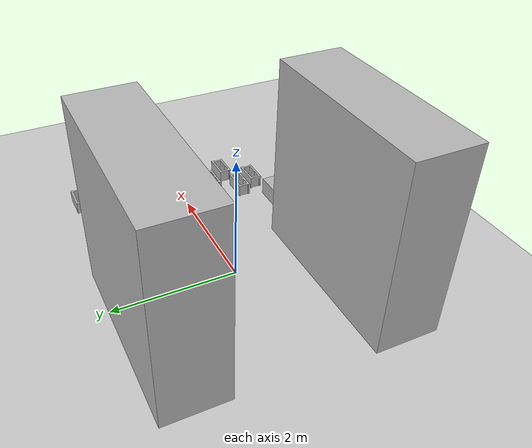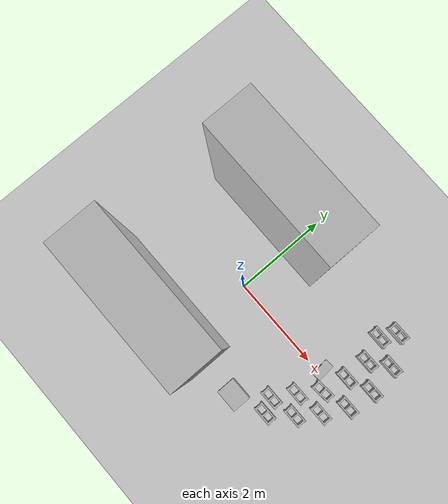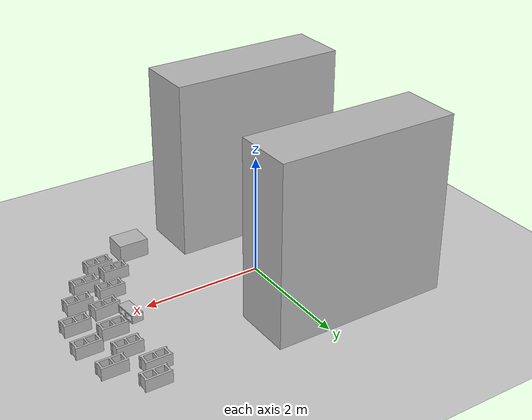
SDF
<sdf version="1.7">
 <world name="default">
  <light name="sun" type="directional">
   <pose>0 0 10 0 -0 0</pose>
   <diffuse>0.8 0.8 0.8 1</diffuse>
   <specular>0.2 0.2 0.2 1</specular>
   <attenuation>
    <range>1000</range>
    <constant>0.9</constant>
    <linear>0.01</linear>
    <quadratic>0.001</quadratic>
   </attenuation>
   <direction>-0.5 0.1 -0.9</direction>
   <spot><inner_angle>0</inner_angle><outer_angle>0</outer_angle><falloff>0</falloff></spot>
  </light>
  <model name="ground_plane">
   <static>1</static>
   <link name="link">
    <collision name="collision">
     <geometry><plane><normal>0 0 1</normal><size>100 100</size></plane></geometry>
     <surface>
      <contact><collide_bitmask>65535</collide_bitmask></contact>
      <friction><ode><mu>100</mu><mu2>50</mu2></ode></friction>
     </surface>
    </collision>
    <visual name="visual">
     <cast_shadows>0</cast_shadows>
     <geometry><plane><normal>0 0 1</normal><size>100 100</size></plane></geometry>
     <material>
      <script><uri>file://media/materials/scripts/gazebo.material</uri><name>Gazebo/Grey</name></script>
     </material>
    </visual>
   </link>
  </model>
  <gravity>0 0 -9.8</gravity>
  <magnetic_field>6e-06 2.3e-05 -4.2e-05</magnetic_field>
  <atmosphere type="adiabatic"/>
  <physics type="ode">
   <max_step_size>0.001</max_step_size>
   <real_time_factor>1</real_time_factor>
   <real_time_update_rate>1000</real_time_update_rate>
  </physics>
  <scene><ambient>0.4 0.4 0.4 1</ambient><background>0.7 0.7 0.7 1</background><shadows>1</shadows></scene>
  <spherical_coordinates>
   <surface_model>EARTH_WGS84</surface_model>
   <latitude_deg>0</latitude_deg>
   <longitude_deg>0</longitude_deg>
   <elevation>0</elevation>
   <heading_deg>0</heading_deg>
  </spherical_coordinates>
  <model name="cardboard_box">
   <pose>1.51233 -1.56152 0.149 0 -0 0</pose>
   <link name="link">
    <inertial>
     <mass>2</mass>
     <inertia>
      <ixx>0.0416667</ixx>
      <ixy>0</ixy>
      <ixz>0</ixz>
      <iyy>0.0566667</iyy>
      <iyz>0</iyz>
      <izz>0.0683333</izz>
     </inertia>
    </inertial>
    <collision name="collision">
     <geometry><box><size>0.5 0.4 0.3</size></box></geometry>
     <surface>
      <friction><ode><mu>1</mu><mu2>1</mu2></ode></friction>
      <contact><ode><kp>1e+07</kp><kd>1</kd><min_depth>0.001</min_depth><max_vel>0.1</max_vel></ode></contact>
     </surface>
    </collision>
    <visual name="visual">
     <pose>0 0 -0.15 0 -0 0</pose>
     <geometry>
      <mesh><uri>model://cardboard_box/meshes/cardboard_box.dae</uri><scale>1.25932 1.00745 0.755591</scale></mesh>
     </geometry>
    </visual>
   </link>
  </model>
  <model name="brick_box_3x1x3">
   <static>1</static>
   <link name="chassis">
    <pose>0 0 1.5 0 -0 0</pose>
    <collision name="collision"><geometry><box><size>3 1 3</size></box></geometry></collision>
    <visual name="visual">
     <geometry><mesh><uri>model://brick_box_3x1x3/meshes/simple_box.dae</uri><scale>3 1 3</scale></mesh></geometry>
     <material>
      <script>
       <uri>model://brick_box_3x1x3/materials/scripts</uri>
       <uri>model://brick_box_3x1x3/materials/textures</uri>
       <name>BrickBox/Diffuse</name>
      </script>
     </material>
    </visual>
   </link>
   <pose>-0.609958 1.51658 0 0 -0 0</pose>
  </model>
  <model name="brick_box_3x1x3_0">
   <static>1</static>
   <link name="chassis">
    <pose>0 0 1.5 0 -0 0</pose>
    <collision name="collision"><geometry><box><size>3 1 3</size></box></geometry></collision>
    <visual name="visual">
     <geometry><mesh><uri>model://brick_box_3x1x3/meshes/simple_box.dae</uri><scale>3 1 3</scale></mesh></geometry>
     <material>
      <script>
       <uri>model://brick_box_3x1x3/materials/scripts</uri>
       <uri>model://brick_box_3x1x3/materials/textures</uri>
       <name>BrickBox/Diffuse</name>
      </script>
     </material>
    </visual>
   </link>
   <pose>-0.748604 -1.51913 0 0 -0 0</pose>
  </model>
  <model name="cinder_block">
   <link name="link">
    <inertial>
     <pose>0 0 0.1016 0 -0 0</pose>
     <mass>5</mass>
     <inertia>
      <ixx>0.028705</ixx>
      <ixy>0</ixy>
      <iyy>0.073708</iyy>
      <ixz>0</ixz>
      <iyz>0</iyz>
      <izz>0.06908</izz>
     </inertia>
    </inertial>
    <visual name="visual">
     <geometry><mesh><uri>model://cinder_block/meshes/cinder_block.dae</uri></mesh></geometry>
    </visual>
    <collision name="left">
     <pose>0 -0.08465 0.1016 0 -0 0</pose>
     <geometry><box><size>0.43495 0.0339 0.2032</size></box></geometry>
     <surface>
      <contact><ode><max_vel>0.1</max_vel><min_depth>0.001</min_depth></ode></contact>
      <friction><ode><mu>1</mu><mu2>1</mu2></ode></friction>
     </surface>
    </collision>
    <collision name="right">
     <pose>0 0.08465 0.1016 0 -0 0</pose>
     <geometry><box><size>0.43495 0.0339 0.2032</size></box></geometry>
     <surface>
      <contact><ode><max_vel>0.1</max_vel><min_depth>0.001</min_depth></ode></contact>
      <friction><ode><mu>1</mu><mu2>1</mu2></ode></friction>
     </surface>
    </collision>
    <collision name="front">
     <pose>0.18625 0 0.1016 0 -0 0</pose>
     <geometry><box><size>0.0339 0.1354 0.203</size></box></geometry>
     <surface>
      <contact><ode><max_vel>0.1</max_vel><min_depth>0.001</min_depth></ode></contact>
      <friction><ode><mu>1</mu><mu2>1</mu2></ode></friction>
     </surface>
    </collision>
    <collision name="middle">
     <pose>0 0 0.1016 0 -0 0</pose>
     <geometry><box><size>0.0339 0.1354 0.203</size></box></geometry>
     <surface>
      <contact><ode><max_vel>0.1</max_vel><min_depth>0.001</min_depth></ode></contact>
      <friction><ode><mu>1</mu><mu2>1</mu2></ode></friction>
     </surface>
    </collision>
    <collision name="back">
     <pose>-0.18625 0 0.1016 0 -0 0</pose>
     <geometry><box><size>0.0339 0.1354 0.203</size></box></geometry>
     <surface>
      <contact><ode><max_vel>0.1</max_vel><min_depth>0.001</min_depth></ode></contact>
      <friction><ode><mu>1</mu><mu2>1</mu2></ode></friction>
     </surface>
    </collision>
   </link>
   <pose>2.1958 -1.33658 -6e-06 -1e-06 2.8e-05 -0</pose>
  </model>
  <model name="cinder_block_clone">
   <link name="link">
    <inertial>
     <pose>0 0 0.1016 0 -0 0</pose>
     <mass>5</mass>
     <inertia>
      <ixx>0.028705</ixx>
      <ixy>0</ixy>
      <iyy>0.073708</iyy>
      <ixz>0</ixz>
      <iyz>0</iyz>
      <izz>0.06908</izz>
     </inertia>
    </inertial>
    <visual name="visual">
     <geometry><mesh><uri>model://cinder_block/meshes/cinder_block.dae</uri></mesh></geometry>
    </visual>
    <collision name="left">
     <pose>0 -0.08465 0.1016 0 -0 0</pose>
     <geometry><box><size>0.43495 0.0339 0.2032</size></box></geometry>
     <surface>
      <contact><ode><max_vel>0.1</max_vel><min_depth>0.001</min_depth></ode></contact>
      <friction><ode><mu>1</mu><mu2>1</mu2></ode></friction>
     </surface>
    </collision>
    <collision name="right">
     <pose>0 0.08465 0.1016 0 -0 0</pose>
     <geometry><box><size>0.43495 0.0339 0.2032</size></box></geometry>
     <surface>
      <contact><ode><max_vel>0.1</max_vel><min_depth>0.001</min_depth></ode></contact>
      <friction><ode><mu>1</mu><mu2>1</mu2></ode></friction>
     </surface>
    </collision>
    <collision name="front">
     <pose>0.18625 0 0.1016 0 -0 0</pose>
     <geometry><box><size>0.0339 0.1354 0.203</size></box></geometry>
     <surface>
      <contact><ode><max_vel>0.1</max_vel><min_depth>0.001</min_depth></ode></contact>
      <friction><ode><mu>1</mu><mu2>1</mu2></ode></friction>
     </surface>
    </collision>
    <collision name="middle">
     <pose>0 0 0.1016 0 -0 0</pose>
     <geometry><box><size>0.0339 0.1354 0.203</size></box></geometry>
     <surface>
      <contact><ode><max_vel>0.1</max_vel><min_depth>0.001</min_depth></ode></contact>
      <friction><ode><mu>1</mu><mu2>1</mu2></ode></friction>
     </surface>
    </collision>
    <collision name="back">
     <pose>-0.18625 0 0.1016 0 -0 0</pose>
     <geometry><box><size>0.0339 0.1354 0.203</size></box></geometry>
     <surface>
      <contact><ode><max_vel>0.1</max_vel><min_depth>0.001</min_depth></ode></contact>
      <friction><ode><mu>1</mu><mu2>1</mu2></ode></friction>
     </surface>
    </collision>
   </link>
   <pose>2.6166 -0.925293 -1.2e-05 2e-06 -1e-06 -0</pose>
  </model>
  <model name="cinder_block_clone_0">
   <link name="link">
    <inertial>
     <pose>0 0 0.1016 0 -0 0</pose>
     <mass>5</mass>
     <inertia>
      <ixx>0.028705</ixx>
      <ixy>0</ixy>
      <iyy>0.073708</iyy>
      <ixz>0</ixz>
      <iyz>0</iyz>
      <izz>0.06908</izz>
     </inertia>
    </inertial>
    <visual name="visual">
     <geometry><mesh><uri>model://cinder_block/meshes/cinder_block.dae</uri></mesh></geometry>
    </visual>
    <collision name="left">
     <pose>0 -0.08465 0.1016 0 -0 0</pose>
     <geometry><box><size>0.43495 0.0339 0.2032</size></box></geometry>
     <surface>
      <contact><ode><max_vel>0.1</max_vel><min_depth>0.001</min_depth></ode></contact>
      <friction><ode><mu>1</mu><mu2>1</mu2></ode></friction>
     </surface>
    </collision>
    <collision name="right">
     <pose>0 0.08465 0.1016 0 -0 0</pose>
     <geometry><box><size>0.43495 0.0339 0.2032</size></box></geometry>
     <surface>
      <contact><ode><max_vel>0.1</max_vel><min_depth>0.001</min_depth></ode></contact>
      <friction><ode><mu>1</mu><mu2>1</mu2></ode></friction>
     </surface>
    </collision>
    <collision name="front">
     <pose>0.18625 0 0.1016 0 -0 0</pose>
     <geometry><box><size>0.0339 0.1354 0.203</size></box></geometry>
     <surface>
      <contact><ode><max_vel>0.1</max_vel><min_depth>0.001</min_depth></ode></contact>
      <friction><ode><mu>1</mu><mu2>1</mu2></ode></friction>
     </surface>
    </collision>
    <collision name="middle">
     <pose>0 0 0.1016 0 -0 0</pose>
     <geometry><box><size>0.0339 0.1354 0.203</size></box></geometry>
     <surface>
      <contact><ode><max_vel>0.1</max_vel><min_depth>0.001</min_depth></ode></contact>
      <friction><ode><mu>1</mu><mu2>1</mu2></ode></friction>
     </surface>
    </collision>
    <collision name="back">
     <pose>-0.18625 0 0.1016 0 -0 0</pose>
     <geometry><box><size>0.0339 0.1354 0.203</size></box></geometry>
     <surface>
      <contact><ode><max_vel>0.1</max_vel><min_depth>0.001</min_depth></ode></contact>
      <friction><ode><mu>1</mu><mu2>1</mu2></ode></friction>
     </surface>
    </collision>
   </link>
   <pose>2.91825 -0.508667 -1.2e-05 2e-06 -1e-06 -0</pose>
  </model>
  <model name="cinder_block_clone_1">
   <link name="link">
    <inertial>
     <pose>0 0 0.1016 0 -0 0</pose>
     <mass>5</mass>
     <inertia>
      <ixx>0.028705</ixx>
      <ixy>0</ixy>
      <iyy>0.073708</iyy>
      <ixz>0</ixz>
      <iyz>0</iyz>
      <izz>0.06908</izz>
     </inertia>
    </inertial>
    <visual name="visual">
     <geometry><mesh><uri>model://cinder_block/meshes/cinder_block.dae</uri></mesh></geometry>
    </visual>
    <collision name="left">
     <pose>0 -0.08465 0.1016 0 -0 0</pose>
     <geometry><box><size>0.43495 0.0339 0.2032</size></box></geometry>
     <surface>
      <contact><ode><max_vel>0.1</max_vel><min_depth>0.001</min_depth></ode></contact>
      <friction><ode><mu>1</mu><mu2>1</mu2></ode></friction>
     </surface>
    </collision>
    <collision name="right">
     <pose>0 0.08465 0.1016 0 -0 0</pose>
     <geometry><box><size>0.43495 0.0339 0.2032</size></box></geometry>
     <surface>
      <contact><ode><max_vel>0.1</max_vel><min_depth>0.001</min_depth></ode></contact>
      <friction><ode><mu>1</mu><mu2>1</mu2></ode></friction>
     </surface>
    </collision>
    <collision name="front">
     <pose>0.18625 0 0.1016 0 -0 0</pose>
     <geometry><box><size>0.0339 0.1354 0.203</size></box></geometry>
     <surface>
      <contact><ode><max_vel>0.1</max_vel><min_depth>0.001</min_depth></ode></contact>
      <friction><ode><mu>1</mu><mu2>1</mu2></ode></friction>
     </surface>
    </collision>
    <collision name="middle">
     <pose>0 0 0.1016 0 -0 0</pose>
     <geometry><box><size>0.0339 0.1354 0.203</size></box></geometry>
     <surface>
      <contact><ode><max_vel>0.1</max_vel><min_depth>0.001</min_depth></ode></contact>
      <friction><ode><mu>1</mu><mu2>1</mu2></ode></friction>
     </surface>
    </collision>
    <collision name="back">
     <pose>-0.18625 0 0.1016 0 -0 0</pose>
     <geometry><box><size>0.0339 0.1354 0.203</size></box></geometry>
     <surface>
      <contact><ode><max_vel>0.1</max_vel><min_depth>0.001</min_depth></ode></contact>
      <friction><ode><mu>1</mu><mu2>1</mu2></ode></friction>
     </surface>
    </collision>
   </link>
   <pose>3.18012 -0.022486 -1.2e-05 2e-06 -1e-06 -0</pose>
  </model>
  <model name="cinder_block_clone_2">
   <link name="link">
    <inertial>
     <pose>0 0 0.1016 0 -0 0</pose>
     <mass>5</mass>
     <inertia>
      <ixx>0.028705</ixx>
      <ixy>0</ixy>
      <iyy>0.073708</iyy>
      <ixz>0</ixz>
      <iyz>0</iyz>
      <izz>0.06908</izz>
     </inertia>
    </inertial>
    <visual name="visual">
     <geometry><mesh><uri>model://cinder_block/meshes/cinder_block.dae</uri></mesh></geometry>
    </visual>
    <collision name="left">
     <pose>0 -0.08465 0.1016 0 -0 0</pose>
     <geometry><box><size>0.43495 0.0339 0.2032</size></box></geometry>
     <surface>
      <contact><ode><max_vel>0.1</max_vel><min_depth>0.001</min_depth></ode></contact>
      <friction><ode><mu>1</mu><mu2>1</mu2></ode></friction>
     </surface>
    </collision>
    <collision name="right">
     <pose>0 0.08465 0.1016 0 -0 0</pose>
     <geometry><box><size>0.43495 0.0339 0.2032</size></box></geometry>
     <surface>
      <contact><ode><max_vel>0.1</max_vel><min_depth>0.001</min_depth></ode></contact>
      <friction><ode><mu>1</mu><mu2>1</mu2></ode></friction>
     </surface>
    </collision>
    <collision name="front">
     <pose>0.18625 0 0.1016 0 -0 0</pose>
     <geometry><box><size>0.0339 0.1354 0.203</size></box></geometry>
     <surface>
      <contact><ode><max_vel>0.1</max_vel><min_depth>0.001</min_depth></ode></contact>
      <friction><ode><mu>1</mu><mu2>1</mu2></ode></friction>
     </surface>
    </collision>
    <collision name="middle">
     <pose>0 0 0.1016 0 -0 0</pose>
     <geometry><box><size>0.0339 0.1354 0.203</size></box></geometry>
     <surface>
      <contact><ode><max_vel>0.1</max_vel><min_depth>0.001</min_depth></ode></contact>
      <friction><ode><mu>1</mu><mu2>1</mu2></ode></friction>
     </surface>
    </collision>
    <collision name="back">
     <pose>-0.18625 0 0.1016 0 -0 0</pose>
     <geometry><box><size>0.0339 0.1354 0.203</size></box></geometry>
     <surface>
      <contact><ode><max_vel>0.1</max_vel><min_depth>0.001</min_depth></ode></contact>
      <friction><ode><mu>1</mu><mu2>1</mu2></ode></friction>
     </surface>
    </collision>
   </link>
   <pose>3.2575 0.552205 -1.2e-05 2e-06 -1e-06 -0</pose>
  </model>
  <model name="cinder_block_clone_3">
   <link name="link">
    <inertial>
     <pose>0 0 0.1016 0 -0 0</pose>
     <mass>5</mass>
     <inertia>
      <ixx>0.028705</ixx>
      <ixy>0</ixy>
      <iyy>0.073708</iyy>
      <ixz>0</ixz>
      <iyz>0</iyz>
      <izz>0.06908</izz>
     </inertia>
    </inertial>
    <visual name="visual">
     <geometry><mesh><uri>model://cinder_block/meshes/cinder_block.dae</uri></mesh></geometry>
    </visual>
    <collision name="left">
     <pose>0 -0.08465 0.1016 0 -0 0</pose>
     <geometry><box><size>0.43495 0.0339 0.2032</size></box></geometry>
     <surface>
      <contact><ode><max_vel>0.1</max_vel><min_depth>0.001</min_depth></ode></contact>
      <friction><ode><mu>1</mu><mu2>1</mu2></ode></friction>
     </surface>
    </collision>
    <collision name="right">
     <pose>0 0.08465 0.1016 0 -0 0</pose>
     <geometry><box><size>0.43495 0.0339 0.2032</size></box></geometry>
     <surface>
      <contact><ode><max_vel>0.1</max_vel><min_depth>0.001</min_depth></ode></contact>
      <friction><ode><mu>1</mu><mu2>1</mu2></ode></friction>
     </surface>
    </collision>
    <collision name="front">
     <pose>0.18625 0 0.1016 0 -0 0</pose>
     <geometry><box><size>0.0339 0.1354 0.203</size></box></geometry>
     <surface>
      <contact><ode><max_vel>0.1</max_vel><min_depth>0.001</min_depth></ode></contact>
      <friction><ode><mu>1</mu><mu2>1</mu2></ode></friction>
     </surface>
    </collision>
    <collision name="middle">
     <pose>0 0 0.1016 0 -0 0</pose>
     <geometry><box><size>0.0339 0.1354 0.203</size></box></geometry>
     <surface>
      <contact><ode><max_vel>0.1</max_vel><min_depth>0.001</min_depth></ode></contact>
      <friction><ode><mu>1</mu><mu2>1</mu2></ode></friction>
     </surface>
    </collision>
    <collision name="back">
     <pose>-0.18625 0 0.1016 0 -0 0</pose>
     <geometry><box><size>0.0339 0.1354 0.203</size></box></geometry>
     <surface>
      <contact><ode><max_vel>0.1</max_vel><min_depth>0.001</min_depth></ode></contact>
      <friction><ode><mu>1</mu><mu2>1</mu2></ode></friction>
     </surface>
    </collision>
   </link>
   <pose>3.15509 1.17087 -1.2e-05 1e-06 -1e-06 0</pose>
  </model>
  <model name="cinder_block_clone_4">
   <link name="link">
    <inertial>
     <pose>0 0 0.1016 0 -0 0</pose>
     <mass>5</mass>
     <inertia>
      <ixx>0.028705</ixx>
      <ixy>0</ixy>
      <iyy>0.073708</iyy>
      <ixz>0</ixz>
      <iyz>0</iyz>
      <izz>0.06908</izz>
     </inertia>
    </inertial>
    <visual name="visual">
     <geometry><mesh><uri>model://cinder_block/meshes/cinder_block.dae</uri></mesh></geometry>
    </visual>
    <collision name="left">
     <pose>0 -0.08465 0.1016 0 -0 0</pose>
     <geometry><box><size>0.43495 0.0339 0.2032</size></box></geometry>
     <surface>
      <contact><ode><max_vel>0.1</max_vel><min_depth>0.001</min_depth></ode></contact>
      <friction><ode><mu>1</mu><mu2>1</mu2></ode></friction>
     </surface>
    </collision>
    <collision name="right">
     <pose>0 0.08465 0.1016 0 -0 0</pose>
     <geometry><box><size>0.43495 0.0339 0.2032</size></box></geometry>
     <surface>
      <contact><ode><max_vel>0.1</max_vel><min_depth>0.001</min_depth></ode></contact>
      <friction><ode><mu>1</mu><mu2>1</mu2></ode></friction>
     </surface>
    </collision>
    <collision name="front">
     <pose>0.18625 0 0.1016 0 -0 0</pose>
     <geometry><box><size>0.0339 0.1354 0.203</size></box></geometry>
     <surface>
      <contact><ode><max_vel>0.1</max_vel><min_depth>0.001</min_depth></ode></contact>
      <friction><ode><mu>1</mu><mu2>1</mu2></ode></friction>
     </surface>
    </collision>
    <collision name="middle">
     <pose>0 0 0.1016 0 -0 0</pose>
     <geometry><box><size>0.0339 0.1354 0.203</size></box></geometry>
     <surface>
      <contact><ode><max_vel>0.1</max_vel><min_depth>0.001</min_depth></ode></contact>
      <friction><ode><mu>1</mu><mu2>1</mu2></ode></friction>
     </surface>
    </collision>
    <collision name="back">
     <pose>-0.18625 0 0.1016 0 -0 0</pose>
     <geometry><box><size>0.0339 0.1354 0.203</size></box></geometry>
     <surface>
      <contact><ode><max_vel>0.1</max_vel><min_depth>0.001</min_depth></ode></contact>
      <friction><ode><mu>1</mu><mu2>1</mu2></ode></friction>
     </surface>
    </collision>
   </link>
   <pose>2.75757 1.72127 -1.2e-05 1e-06 -1e-06 0</pose>
  </model>
  <model name="cinder_block_clone_5">
   <link name="link">
    <inertial>
     <pose>0 0 0.1016 0 -0 0</pose>
     <mass>5</mass>
     <inertia>
      <ixx>0.028705</ixx>
      <ixy>0</ixy>
      <iyy>0.073708</iyy>
      <ixz>0</ixz>
      <iyz>0</iyz>
      <izz>0.06908</izz>
     </inertia>
    </inertial>
    <visual name="visual">
     <geometry><mesh><uri>model://cinder_block/meshes/cinder_block.dae</uri></mesh></geometry>
    </visual>
    <collision name="left">
     <pose>0 -0.08465 0.1016 0 -0 0</pose>
     <geometry><box><size>0.43495 0.0339 0.2032</size></box></geometry>
     <surface>
      <contact><ode><max_vel>0.1</max_vel><min_depth>0.001</min_depth></ode></contact>
      <friction><ode><mu>1</mu><mu2>1</mu2></ode></friction>
     </surface>
    </collision>
    <collision name="right">
     <pose>0 0.08465 0.1016 0 -0 0</pose>
     <geometry><box><size>0.43495 0.0339 0.2032</size></box></geometry>
     <surface>
      <contact><ode><max_vel>0.1</max_vel><min_depth>0.001</min_depth></ode></contact>
      <friction><ode><mu>1</mu><mu2>1</mu2></ode></friction>
     </surface>
    </collision>
    <collision name="front">
     <pose>0.18625 0 0.1016 0 -0 0</pose>
     <geometry><box><size>0.0339 0.1354 0.203</size></box></geometry>
     <surface>
      <contact><ode><max_vel>0.1</max_vel><min_depth>0.001</min_depth></ode></contact>
      <friction><ode><mu>1</mu><mu2>1</mu2></ode></friction>
     </surface>
    </collision>
    <collision name="middle">
     <pose>0 0 0.1016 0 -0 0</pose>
     <geometry><box><size>0.0339 0.1354 0.203</size></box></geometry>
     <surface>
      <contact><ode><max_vel>0.1</max_vel><min_depth>0.001</min_depth></ode></contact>
      <friction><ode><mu>1</mu><mu2>1</mu2></ode></friction>
     </surface>
    </collision>
    <collision name="back">
     <pose>-0.18625 0 0.1016 0 -0 0</pose>
     <geometry><box><size>0.0339 0.1354 0.203</size></box></geometry>
     <surface>
      <contact><ode><max_vel>0.1</max_vel><min_depth>0.001</min_depth></ode></contact>
      <friction><ode><mu>1</mu><mu2>1</mu2></ode></friction>
     </surface>
    </collision>
   </link>
   <pose>2.61918 -0.187169 -1e-06 2e-06 -0 0.095207</pose>
  </model>
  <model name="cinder_block_clone_6">
   <link name="link">
    <inertial>
     <pose>0 0 0.1016 0 -0 0</pose>
     <mass>5</mass>
     <inertia>
      <ixx>0.028705</ixx>
      <ixy>0</ixy>
      <iyy>0.073708</iyy>
      <ixz>0</ixz>
      <iyz>0</iyz>
      <izz>0.06908</izz>
     </inertia>
    </inertial>
    <visual name="visual">
     <geometry><mesh><uri>model://cinder_block/meshes/cinder_block.dae</uri></mesh></geometry>
    </visual>
    <collision name="left">
     <pose>0 -0.08465 0.1016 0 -0 0</pose>
     <geometry><box><size>0.43495 0.0339 0.2032</size></box></geometry>
     <surface>
      <contact><ode><max_vel>0.1</max_vel><min_depth>0.001</min_depth></ode></contact>
      <friction><ode><mu>1</mu><mu2>1</mu2></ode></friction>
     </surface>
    </collision>
    <collision name="right">
     <pose>0 0.08465 0.1016 0 -0 0</pose>
     <geometry><box><size>0.43495 0.0339 0.2032</size></box></geometry>
     <surface>
      <contact><ode><max_vel>0.1</max_vel><min_depth>0.001</min_depth></ode></contact>
      <friction><ode><mu>1</mu><mu2>1</mu2></ode></friction>
     </surface>
    </collision>
    <collision name="front">
     <pose>0.18625 0 0.1016 0 -0 0</pose>
     <geometry><box><size>0.0339 0.1354 0.203</size></box></geometry>
     <surface>
      <contact><ode><max_vel>0.1</max_vel><min_depth>0.001</min_depth></ode></contact>
      <friction><ode><mu>1</mu><mu2>1</mu2></ode></friction>
     </surface>
    </collision>
    <collision name="middle">
     <pose>0 0 0.1016 0 -0 0</pose>
     <geometry><box><size>0.0339 0.1354 0.203</size></box></geometry>
     <surface>
      <contact><ode><max_vel>0.1</max_vel><min_depth>0.001</min_depth></ode></contact>
      <friction><ode><mu>1</mu><mu2>1</mu2></ode></friction>
     </surface>
    </collision>
    <collision name="back">
     <pose>-0.18625 0 0.1016 0 -0 0</pose>
     <geometry><box><size>0.0339 0.1354 0.203</size></box></geometry>
     <surface>
      <contact><ode><max_vel>0.1</max_vel><min_depth>0.001</min_depth></ode></contact>
      <friction><ode><mu>1</mu><mu2>1</mu2></ode></friction>
     </surface>
    </collision>
   </link>
   <pose>2.32662 -0.603815 -6e-06 3e-06 2.6e-05 0</pose>
  </model>
  <model name="cinder_block_clone_7">
   <link name="link">
    <inertial>
     <pose>0 0 0.1016 0 -0 0</pose>
     <mass>5</mass>
     <inertia>
      <ixx>0.028705</ixx>
      <ixy>0</ixy>
      <iyy>0.073708</iyy>
      <ixz>0</ixz>
      <iyz>0</iyz>
      <izz>0.06908</izz>
     </inertia>
    </inertial>
    <visual name="visual">
     <geometry><mesh><uri>model://cinder_block/meshes/cinder_block.dae</uri></mesh></geometry>
    </visual>
    <collision name="left">
     <pose>0 -0.08465 0.1016 0 -0 0</pose>
     <geometry><box><size>0.43495 0.0339 0.2032</size></box></geometry>
     <surface>
      <contact><ode><max_vel>0.1</max_vel><min_depth>0.001</min_depth></ode></contact>
      <friction><ode><mu>1</mu><mu2>1</mu2></ode></friction>
     </surface>
    </collision>
    <collision name="right">
     <pose>0 0.08465 0.1016 0 -0 0</pose>
     <geometry><box><size>0.43495 0.0339 0.2032</size></box></geometry>
     <surface>
      <contact><ode><max_vel>0.1</max_vel><min_depth>0.001</min_depth></ode></contact>
      <friction><ode><mu>1</mu><mu2>1</mu2></ode></friction>
     </surface>
    </collision>
    <collision name="front">
     <pose>0.18625 0 0.1016 0 -0 0</pose>
     <geometry><box><size>0.0339 0.1354 0.203</size></box></geometry>
     <surface>
      <contact><ode><max_vel>0.1</max_vel><min_depth>0.001</min_depth></ode></contact>
      <friction><ode><mu>1</mu><mu2>1</mu2></ode></friction>
     </surface>
    </collision>
    <collision name="middle">
     <pose>0 0 0.1016 0 -0 0</pose>
     <geometry><box><size>0.0339 0.1354 0.203</size></box></geometry>
     <surface>
      <contact><ode><max_vel>0.1</max_vel><min_depth>0.001</min_depth></ode></contact>
      <friction><ode><mu>1</mu><mu2>1</mu2></ode></friction>
     </surface>
    </collision>
    <collision name="back">
     <pose>-0.18625 0 0.1016 0 -0 0</pose>
     <geometry><box><size>0.0339 0.1354 0.203</size></box></geometry>
     <surface>
      <contact><ode><max_vel>0.1</max_vel><min_depth>0.001</min_depth></ode></contact>
      <friction><ode><mu>1</mu><mu2>1</mu2></ode></friction>
     </surface>
    </collision>
   </link>
   <pose>2.05057 -1.04063 -6e-06 3e-06 2.6e-05 0</pose>
  </model>
  <model name="cinder_block_clone_8">
   <link name="link">
    <inertial>
     <pose>0 0 0.1016 0 -0 0</pose>
     <mass>5</mass>
     <inertia>
      <ixx>0.028705</ixx>
      <ixy>0</ixy>
      <iyy>0.073708</iyy>
      <ixz>0</ixz>
      <iyz>0</iyz>
      <izz>0.06908</izz>
     </inertia>
    </inertial>
    <visual name="visual">
     <geometry><mesh><uri>model://cinder_block/meshes/cinder_block.dae</uri></mesh></geometry>
    </visual>
    <collision name="left">
     <pose>0 -0.08465 0.1016 0 -0 0</pose>
     <geometry><box><size>0.43495 0.0339 0.2032</size></box></geometry>
     <surface>
      <contact><ode><max_vel>0.1</max_vel><min_depth>0.001</min_depth></ode></contact>
      <friction><ode><mu>1</mu><mu2>1</mu2></ode></friction>
     </surface>
    </collision>
    <collision name="right">
     <pose>0 0.08465 0.1016 0 -0 0</pose>
     <geometry><box><size>0.43495 0.0339 0.2032</size></box></geometry>
     <surface>
      <contact><ode><max_vel>0.1</max_vel><min_depth>0.001</min_depth></ode></contact>
      <friction><ode><mu>1</mu><mu2>1</mu2></ode></friction>
     </surface>
    </collision>
    <collision name="front">
     <pose>0.18625 0 0.1016 0 -0 0</pose>
     <geometry><box><size>0.0339 0.1354 0.203</size></box></geometry>
     <surface>
      <contact><ode><max_vel>0.1</max_vel><min_depth>0.001</min_depth></ode></contact>
      <friction><ode><mu>1</mu><mu2>1</mu2></ode></friction>
     </surface>
    </collision>
    <collision name="middle">
     <pose>0 0 0.1016 0 -0 0</pose>
     <geometry><box><size>0.0339 0.1354 0.203</size></box></geometry>
     <surface>
      <contact><ode><max_vel>0.1</max_vel><min_depth>0.001</min_depth></ode></contact>
      <friction><ode><mu>1</mu><mu2>1</mu2></ode></friction>
     </surface>
    </collision>
    <collision name="back">
     <pose>-0.18625 0 0.1016 0 -0 0</pose>
     <geometry><box><size>0.0339 0.1354 0.203</size></box></geometry>
     <surface>
      <contact><ode><max_vel>0.1</max_vel><min_depth>0.001</min_depth></ode></contact>
      <friction><ode><mu>1</mu><mu2>1</mu2></ode></friction>
     </surface>
    </collision>
   </link>
   <pose>2.74396 0.346475 -6e-06 3e-06 2.6e-05 0</pose>
  </model>
  <model name="cinder_block_clone_9">
   <link name="link">
    <inertial>
     <pose>0 0 0.1016 0 -0 0</pose>
     <mass>5</mass>
     <inertia>
      <ixx>0.028705</ixx>
      <ixy>0</ixy>
      <iyy>0.073708</iyy>
      <ixz>0</ixz>
      <iyz>0</iyz>
      <izz>0.06908</izz>
     </inertia>
    </inertial>
    <visual name="visual">
     <geometry><mesh><uri>model://cinder_block/meshes/cinder_block.dae</uri></mesh></geometry>
    </visual>
    <collision name="left">
     <pose>0 -0.08465 0.1016 0 -0 0</pose>
     <geometry><box><size>0.43495 0.0339 0.2032</size></box></geometry>
     <surface>
      <contact><ode><max_vel>0.1</max_vel><min_depth>0.001</min_depth></ode></contact>
      <friction><ode><mu>1</mu><mu2>1</mu2></ode></friction>
     </surface>
    </collision>
    <collision name="right">
     <pose>0 0.08465 0.1016 0 -0 0</pose>
     <geometry><box><size>0.43495 0.0339 0.2032</size></box></geometry>
     <surface>
      <contact><ode><max_vel>0.1</max_vel><min_depth>0.001</min_depth></ode></contact>
      <friction><ode><mu>1</mu><mu2>1</mu2></ode></friction>
     </surface>
    </collision>
    <collision name="front">
     <pose>0.18625 0 0.1016 0 -0 0</pose>
     <geometry><box><size>0.0339 0.1354 0.203</size></box></geometry>
     <surface>
      <contact><ode><max_vel>0.1</max_vel><min_depth>0.001</min_depth></ode></contact>
      <friction><ode><mu>1</mu><mu2>1</mu2></ode></friction>
     </surface>
    </collision>
    <collision name="middle">
     <pose>0 0 0.1016 0 -0 0</pose>
     <geometry><box><size>0.0339 0.1354 0.203</size></box></geometry>
     <surface>
      <contact><ode><max_vel>0.1</max_vel><min_depth>0.001</min_depth></ode></contact>
      <friction><ode><mu>1</mu><mu2>1</mu2></ode></friction>
     </surface>
    </collision>
    <collision name="back">
     <pose>-0.18625 0 0.1016 0 -0 0</pose>
     <geometry><box><size>0.0339 0.1354 0.203</size></box></geometry>
     <surface>
      <contact><ode><max_vel>0.1</max_vel><min_depth>0.001</min_depth></ode></contact>
      <friction><ode><mu>1</mu><mu2>1</mu2></ode></friction>
     </surface>
    </collision>
   </link>
   <pose>2.76844 0.875452 -6e-06 3e-06 2.6e-05 0</pose>
  </model>
  <model name="cinder_block_clone_10">
   <link name="link">
    <inertial>
     <pose>0 0 0.1016 0 -0 0</pose>
     <mass>5</mass>
     <inertia>
      <ixx>0.028705</ixx>
      <ixy>0</ixy>
      <iyy>0.073708</iyy>
      <ixz>0</ixz>
      <iyz>0</iyz>
      <izz>0.06908</izz>
     </inertia>
    </inertial>
    <visual name="visual">
     <geometry><mesh><uri>model://cinder_block/meshes/cinder_block.dae</uri></mesh></geometry>
    </visual>
    <collision name="left">
     <pose>0 -0.08465 0.1016 0 -0 0</pose>
     <geometry><box><size>0.43495 0.0339 0.2032</size></box></geometry>
     <surface>
      <contact><ode><max_vel>0.1</max_vel><min_depth>0.001</min_depth></ode></contact>
      <friction><ode><mu>1</mu><mu2>1</mu2></ode></friction>
     </surface>
    </collision>
    <collision name="right">
     <pose>0 0.08465 0.1016 0 -0 0</pose>
     <geometry><box><size>0.43495 0.0339 0.2032</size></box></geometry>
     <surface>
      <contact><ode><max_vel>0.1</max_vel><min_depth>0.001</min_depth></ode></contact>
      <friction><ode><mu>1</mu><mu2>1</mu2></ode></friction>
     </surface>
    </collision>
    <collision name="front">
     <pose>0.18625 0 0.1016 0 -0 0</pose>
     <geometry><box><size>0.0339 0.1354 0.203</size></box></geometry>
     <surface>
      <contact><ode><max_vel>0.1</max_vel><min_depth>0.001</min_depth></ode></contact>
      <friction><ode><mu>1</mu><mu2>1</mu2></ode></friction>
     </surface>
    </collision>
    <collision name="middle">
     <pose>0 0 0.1016 0 -0 0</pose>
     <geometry><box><size>0.0339 0.1354 0.203</size></box></geometry>
     <surface>
      <contact><ode><max_vel>0.1</max_vel><min_depth>0.001</min_depth></ode></contact>
      <friction><ode><mu>1</mu><mu2>1</mu2></ode></friction>
     </surface>
    </collision>
    <collision name="back">
     <pose>-0.18625 0 0.1016 0 -0 0</pose>
     <geometry><box><size>0.0339 0.1354 0.203</size></box></geometry>
     <surface>
      <contact><ode><max_vel>0.1</max_vel><min_depth>0.001</min_depth></ode></contact>
      <friction><ode><mu>1</mu><mu2>1</mu2></ode></friction>
     </surface>
    </collision>
   </link>
   <pose>2.57587 1.38346 -6e-06 3e-06 2.6e-05 0</pose>
  </model>
  <model name="cinder_block_2">
   <link name="link">
    <inertial>
     <pose>0 0 0.071438 0 -0 0</pose>
     <mass>5</mass>
     <inertia>
      <ixx>0.06908</ixx>
      <ixy>0</ixy>
      <iyy>0.028705</iyy>
      <ixz>0</ixz>
      <iyz>0</iyz>
      <izz>0.073708</izz>
     </inertia>
    </inertial>
    <visual name="visual">
     <geometry><mesh><uri>model://cinder_block_2/meshes/cinder_block.dae</uri></mesh></geometry>
    </visual>
    <collision name="top">
     <pose>0 0 0.130175 0 -0 0</pose>
     <geometry><box><size>0.19368 0.396875 0.0254</size></box></geometry>
     <surface>
      <contact><ode><max_vel>0.1</max_vel><min_depth>0.001</min_depth></ode></contact>
      <friction><ode><mu>1</mu><mu2>1</mu2></ode></friction>
     </surface>
    </collision>
    <collision name="bottom">
     <pose>0 0 0.0127 0 -0 0</pose>
     <geometry><box><size>0.19368 0.396875 0.0254</size></box></geometry>
     <surface>
      <contact><ode><max_vel>0.1</max_vel><min_depth>0.001</min_depth></ode></contact>
      <friction><ode><mu>1</mu><mu2>1</mu2></ode></friction>
     </surface>
    </collision>
    <collision name="left">
     <pose>0 -0.185738 0.071438 0 -0 0</pose>
     <geometry><box><size>0.19368 0.0254 0.092075</size></box></geometry>
     <surface>
      <contact><ode><max_vel>0.1</max_vel><min_depth>0.001</min_depth></ode></contact>
      <friction><ode><mu>1</mu><mu2>1</mu2></ode></friction>
     </surface>
    </collision>
    <collision name="right">
     <pose>0 0.185738 0.071438 0 -0 0</pose>
     <geometry><box><size>0.19368 0.0254 0.092075</size></box></geometry>
     <surface>
      <contact><ode><max_vel>0.1</max_vel><min_depth>0.001</min_depth></ode></contact>
      <friction><ode><mu>1</mu><mu2>1</mu2></ode></friction>
     </surface>
    </collision>
    <collision name="middle">
     <pose>0 0 0.071438 0 -0 0</pose>
     <geometry><box><size>0.19368 0.0254 0.092075</size></box></geometry>
     <surface>
      <contact><ode><max_vel>0.1</max_vel><min_depth>0.001</min_depth></ode></contact>
      <friction><ode><mu>1</mu><mu2>1</mu2></ode></friction>
     </surface>
    </collision>
   </link>
   <pose>2.31755 0.086461 -0.000128 -4.4e-05 0.000878 0.086136</pose>
  </model>
 </world>
</sdf>
